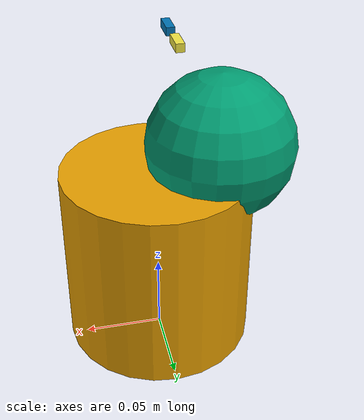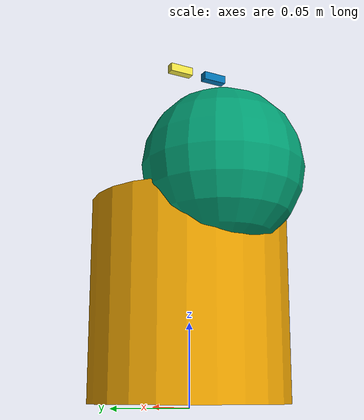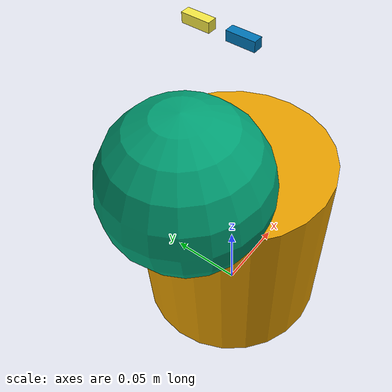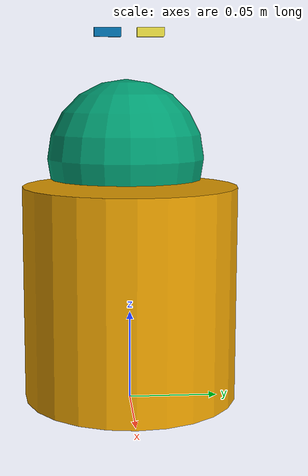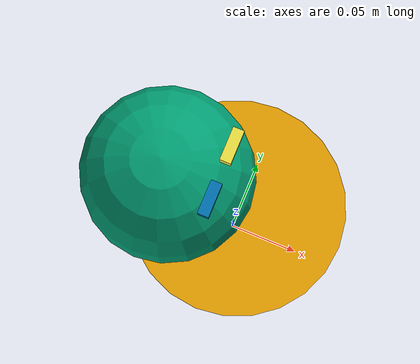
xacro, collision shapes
<?xml version="1.0"?>
<robot xmlns:sensor="http://playerstage.sourceforge.net/gazebo/xmlschema/#sensor"
       xmlns:controller="http://playerstage.sourceforge.net/gazebo/xmlschema/#controller"
       xmlns:interface="http://playerstage.sourceforge.net/gazebo/xmlschema/#interface"
       xmlns:xacro="http://playerstage.sourceforge.net/gazebo/xmlschema/#interface"
       name="aisoy" >

  <!-- AISoy1 -->
  <include filename="$(find aisoy_description)/robots/aisoy.urdf.xacro" />

</robot>

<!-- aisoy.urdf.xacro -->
<robot xmlns:sensor="http://playerstage.sourceforge.net/gazebo/xmlschema/#sensor"
       xmlns:controller="http://playerstage.sourceforge.net/gazebo/xmlschema/#controller"
       xmlns:interface="http://playerstage.sourceforge.net/gazebo/xmlschema/#interface"
       xmlns:xacro="http://ros.org/wiki/xacro"
			name="aisoy" >

  <!-- The following included files set up definitions of parts of the robot body -->
  <!-- misc common stuff? -->
  <include filename="$(find aisoy_description)/urdf/common.xacro" />

  <!-- AISoy1 head -->
  <include filename="$(find aisoy_description)/urdf/head/head.urdf.xacro" />

  <!-- AISoy1 eyebrows -->
  <include filename="$(find aisoy_description)/urdf/eyebrow/eyebrow.urdf.xacro" />

  <!-- AISoy1 torso -->
  <include filename="$(find aisoy_description)/urdf/torso/torso.urdf.xacro" />

  <!-- generic simulator_gazebo plugins for starting mechanism control, ros time, ros battery -->
  <include filename="$(find aisoy_description)/gazebo/gazebo.urdf.xacro" />

  <!-- materials for visualization -->
  <include filename="$(find aisoy_description)/urdf/materials.urdf.xacro" />

  <xacro:aisoy_torso name="torso" parent="base_link"  />
  <xacro:aisoy_head name="head" parent="torso_link" />
  <xacro:aisoy_eyebrow name="eyebrow" side="l" reflect="1" parent="head_tilt_link" />
  <xacro:aisoy_eyebrow name="eyebrow" side="r" reflect="-1" parent="head_tilt_link" />

</robot>

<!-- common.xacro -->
<robot>

  <property name="M_PI" value="3.1415926535897931" />
  <property name="VELOCITY_LIMIT_SCALE" value="0.6" />

  <!-- ********** Right Arm ********** -->

  <!-- ********** Head ********** -->
  <!-- Head Location: Add to the transform from torso to head_pan_link (Nominally 0) -->
  <property name="cal_head_x" value="0.0" />
  <property name="cal_head_y" value="0.0" />
  <property name="cal_head_z" value="0.0" />
  <property name="cal_head_roll" value="0.0" />
  <property name="cal_head_pitch" value="0.0" />
  <property name="cal_head_yaw" value="0.0" />

  <!-- Flag Offsets -->
  <property name="cal_head_pan_flag"  value="0.0" />
  <property name="cal_head_tilt_flag" value="0.0" />

  <property name="cal_head_pan_flag" value="0.0"/>
  <property name="cal_head_tilt_flag" value="0.0"/>

</robot>

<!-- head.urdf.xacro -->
<robot xmlns:sensor="http://playerstage.sourceforge.net/gazebo/xmlschema/#sensor"
       xmlns:controller="http://playerstage.sourceforge.net/gazebo/xmlschema/#controller"
       xmlns:interface="http://playerstage.sourceforge.net/gazebo/xmlschema/#interface"
       xmlns:xacro="http://ros.org/wiki/xacro">

  <include filename="$(find aisoy_description)/urdf/head/head.transmission.xacro" />
  <property name="M_PI" value="3.1415926535897931" />

  <xacro:macro name="aisoy_head_pan" params="name parent">
		<link name="${name}_link">
 			<inertial>
				<mass value="0.16" />
        <origin xyz="0.010907 0.031693 0.090507" rpy="0 0 0" />
        <inertia ixx="0.032497592"  ixy="0.00063604088"  ixz="0.0025851534"
                 iyy="0.046545627"  iyz="-0.0024534295"  izz="0.057652724" />
		  </inertial>
		  <visual>
				<origin xyz="0 0 0" />
		    <geometry>
					<box size="0.001 0.001 0.001"/>
		    </geometry>
		  </visual>
		  <collision>
				<origin xyz="0 0 0" />
		    <geometry>
					<box size="0.001 0.001 0.001"/>
		    </geometry>
		  </collision>
    </link>

		<joint name="${name}_joint" type="revolute">
      <axis xyz="0 0 1" />
      <limit lower="${-M_PI/2}" upper="${M_PI/2}" effort="2.645" velocity="6" />
      <safety_controller k_velocity="1.5" soft_lower_limit="${-M_PI/2+0.15}" soft_upper_limit="${M_PI/2-0.15}" k_position="100" />
      <calibration rising="0.0" />
      <dynamics damping="0.5" />
			<origin xyz="-0.040 0.0 0.1325" />
      <parent link="${parent}"/>
      <child link="${name}_link"/>
    </joint>

    <!-- extensions -->
    <xacro:aisoy_head_pan_transmission name="head_pan" />

  </xacro:macro>

  <xacro:macro name="aisoy_head_tilt" params="name parent">

    <link name="${name}_link">
			<inertial>
				<mass value="0.16" /> <!-- mass/cog/moi updated per 100505_link_data.xls -->
        <origin xyz="0.001716 -0.019556 0.055002" rpy="0 0 0" />
        <inertia ixx="0.024223222"  ixy="0.00062063507"  ixz="-0.000096909696"
                 iyy="0.054723086"  iyz="0.00279702400"
                 izz="0.067306377" />
		  </inertial>
      <visual>
				<origin xyz="0.040 0.0 -0.135" rpy="0 0 0" /> <!-- por el .dae, probar .stl -->
		    <geometry>
		       <mesh filename="package://aisoy_description/meshes/head/head.dae"/>
		    </geometry>
      </visual>
      <collision>
				<origin xyz="0 0 0" rpy="0 0 0" />
		    <geometry>
         	<sphere radius="0.047"/>
        </geometry>
      </collision>
    </link>

		<joint name="${name}_joint" type="revolute">
			<origin xyz="0 0 0.002" />
      <axis xyz="0 1 0" />
      <limit lower="${-M_PI/6}" upper="${M_PI/6}" effort="18" velocity="5" />
      <safety_controller k_velocity="3.0" soft_lower_limit="${-M_PI/6 + 0.1}" soft_upper_limit="${M_PI/6 - 0.1}" k_position="100" />
      <calibration falling="${0.0+cal_head_tilt_flag}" />
      <dynamics damping="10.0" />
      <parent link="head_pan_link"/>
      <child link="head_tilt_link"/>
    </joint>

    <!-- extensions -->
		<xacro:aisoy_head_tilt_transmission name="head_tilt" />

  </xacro:macro>

  <xacro:macro name="aisoy_head" params="name parent">
    <xacro:aisoy_head_pan name="${name}_pan" parent="${parent}" />
    <xacro:aisoy_head_tilt name="${name}_tilt" parent="${name}_pan_link" />

  </xacro:macro>

</robot>

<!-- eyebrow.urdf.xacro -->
<robot xmlns:sensor="http://playerstage.sourceforge.net/gazebo/xmlschema/#sensor"
       xmlns:controller="http://playerstage.sourceforge.net/gazebo/xmlschema/#controller"
       xmlns:interface="http://playerstage.sourceforge.net/gazebo/xmlschema/#interface"
       xmlns:xacro="http://ros.org/wiki/xacro">

  <include filename="$(find aisoy_description)/urdf/eyebrow/eyebrow.transmission.xacro" />
  <property name="M_PI" value="3.1415926535897931" />

  <xacro:macro name="aisoy_eyebrow" params="name side reflect parent">

		<link name="${side}_${name}_link">
		  <inertial>
		    <mass value="0.0044168" />
		    <origin xyz="0.0014088 0.0043205 0.0030777" />
		    <inertia ixx="0.0000002" ixy="0.0" ixz="0.0"
		      iyy="0.0" iyz="0.0" izz="0.0000002" />
		  </inertial>

		  <visual>
				<origin xyz="0.01 ${-reflect*0.014} -0.208" rpy="0 0 0" />
		    <geometry>
		      <mesh filename="package://aisoy_description/meshes/eyebrow/eyebrow_${side}.dae"/>
		    </geometry>
		  </visual>

		  <collision>
		    <origin xyz="0 0 0" rpy="0 0 0" />
		    <geometry>
		      <box size="0.005 0.015 0.005" />
		    </geometry>
		  </collision>
		</link>

		<joint name="${side}_${name}_joint" type="revolute">
		  <origin xyz="0.03 ${reflect*0.012} 0.0725" rpy="0 0 0" />
		  <axis xyz="${reflect} 0 0"/>
		  <limit effort="10.0" lower="${M_PI/-6}" upper="${M_PI/8}" velocity="${M_PI}"/>
		  <calibration rising="0.0"/>
		  <parent link="${parent}"/>
		  <child link="${side}_${name}_link" />
		</joint>

		  <!-- extensions -->
		<xacro:aisoy_eyebrow_transmission name="${name}" side="${side}" />

  </xacro:macro>

</robot>

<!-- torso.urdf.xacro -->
<robot xmlns:sensor="http://playerstage.sourceforge.net/gazebo/xmlschema/#sensor"
       xmlns:controller="http://playerstage.sourceforge.net/gazebo/xmlschema/#controller"
       xmlns:interface="http://playerstage.sourceforge.net/gazebo/xmlschema/#interface"
       xmlns:xacro="http://ros.org/wiki/xacro">

  <xacro:macro name="aisoy_torso" params="name parent">
    <link name="${name}_link">
		  <inertial>
		    <mass value="1.1242672" />
				<origin xyz="0 0 0" />
		    <inertia ixx="0.0032602" ixy="0.0000001" ixz="-0.0001248"
		      			 iyy="0.0033958" iyz="0.0000002" izz="0.0039815" />
		  </inertial>
      <visual>
        <origin xyz="0 0 0" rpy="0 0 0" />
        <geometry>
          <mesh filename="package://aisoy_description/meshes/torso/torso.dae"  />
        </geometry>
      </visual>
		  <collision>
				<origin xyz="0 0 0.0625" rpy="0 0 0" />
		    <geometry>
		      <cylinder length="0.12" radius="0.06"/>
		    </geometry>
		  </collision>
    </link>

  </xacro:macro>

</robot>
